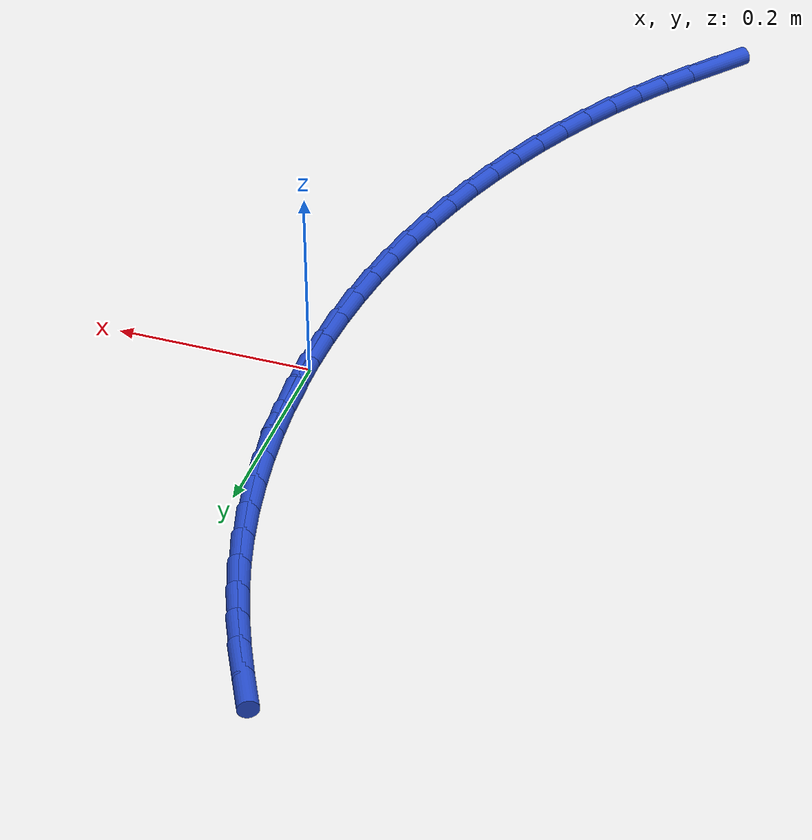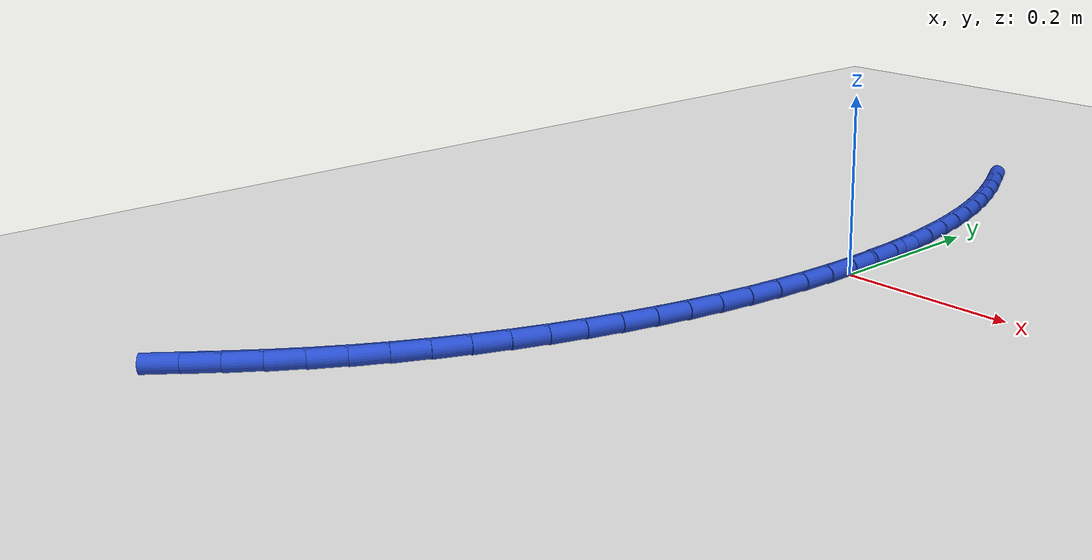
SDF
<sdf version="1.6">
 <world name="default">
  <model name="ground_plane">
   <static>1</static>
   <link name="link">
    <collision name="collision">
     <geometry><plane><normal>0 0 1</normal><size>100 100</size></plane></geometry>
     <surface><friction><ode><mu>100</mu><mu2>50</mu2></ode></friction></surface>
    </collision>
    <visual name="visual">
     <cast_shadows>0</cast_shadows>
     <geometry><plane><normal>0 0 1</normal><size>100 100</size></plane></geometry>
     <material>
      <script><uri>file://media/materials/scripts/gazebo.material</uri><name>Gazebo/WhiteGlow</name></script>
     </material>
    </visual>
   </link>
  </model>
  <model name="line">
   <link name="link_0">
    <pose>1.6479873021779667e-17 -9.020562075079397e-17 0.01 0 1.57 -1.5525866050598032</pose>
    <collision name="collision">
     <geometry><cylinder><radius>0.01</radius><length>0.08</length></cylinder></geometry>
    </collision>
    <visual name="visual">
     <material>
      <script><name>Gazebo/Blue</name><uri>file://media/materials/scripts/gazebo.material</uri></script>
     </material>
     <geometry><cylinder><radius>0.01</radius><length>0.08</length></cylinder></geometry>
    </visual>
   </link>
   <link name="link_1">
    <pose>-0.0006907679868224856 0.037929829114566306 0.01 0 1.57 -1.5156297816635451</pose>
    <collision name="collision">
     <geometry><cylinder><radius>0.01</radius><length>0.08</length></cylinder></geometry>
    </collision>
    <visual name="visual">
     <material>
      <script><name>Gazebo/Blue</name><uri>file://media/materials/scripts/gazebo.material</uri></script>
     </material>
     <geometry><cylinder><radius>0.01</radius><length>0.08</length></cylinder></geometry>
    </visual>
   </link>
   <link name="link_2">
    <pose>-0.002787971782735226 0.07590711865418806 0.01 0 1.57 -1.47872899902266</pose>
    <collision name="collision">
     <geometry><cylinder><radius>0.01</radius><length>0.08</length></cylinder></geometry>
    </collision>
    <visual name="visual">
     <material>
      <script><name>Gazebo/Blue</name><uri>file://media/materials/scripts/gazebo.material</uri></script>
     </material>
     <geometry><cylinder><radius>0.01</radius><length>0.08</length></cylinder></geometry>
    </visual>
   </link>
   <link name="link_3">
    <pose>-0.006281897958674518 0.11374951848862565 0.01 0 1.57 -1.4414515022735026</pose>
    <collision name="collision">
     <geometry><cylinder><radius>0.01</radius><length>0.08</length></cylinder></geometry>
    </collision>
    <visual name="visual">
     <material>
      <script><name>Gazebo/Blue</name><uri>file://media/materials/scripts/gazebo.material</uri></script>
     </material>
     <geometry><cylinder><radius>0.01</radius><length>0.08</length></cylinder></geometry>
    </visual>
   </link>
   <link name="link_4">
    <pose>-0.011162833085576675 0.15127467848763962 0.01 0 1.57 -1.4033543646934457</pose>
    <collision name="collision">
     <geometry><cylinder><radius>0.01</radius><length>0.08</length></cylinder></geometry>
    </collision>
    <visual name="visual">
     <material>
      <script><name>Gazebo/Blue</name><uri>file://media/materials/scripts/gazebo.material</uri></script>
     </material>
     <geometry><cylinder><radius>0.01</radius><length>0.08</length></cylinder></geometry>
    </visual>
   </link>
   <link name="link_5">
    <pose>-0.017421063734378003 0.18830024852099056 0.01 0 1.57 -1.3639714678418755</pose>
    <collision name="collision">
     <geometry><cylinder><radius>0.01</radius><length>0.08</length></cylinder></geometry>
    </collision>
    <visual name="visual">
     <material>
      <script><name>Gazebo/Blue</name><uri>file://media/materials/scripts/gazebo.material</uri></script>
     </material>
     <geometry><cylinder><radius>0.01</radius><length>0.08</length></cylinder></geometry>
    </visual>
   </link>
   <link name="link_6">
    <pose>-0.025046876476014824 0.22464387845843903 0.01 0 1.57 -1.3227998943592105</pose>
    <collision name="collision">
     <geometry><cylinder><radius>0.01</radius><length>0.08</length></cylinder></geometry>
    </collision>
    <visual name="visual">
     <material>
      <script><name>Gazebo/Blue</name><uri>file://media/materials/scripts/gazebo.material</uri></script>
     </material>
     <geometry><cylinder><radius>0.01</radius><length>0.08</length></cylinder></geometry>
    </visual>
   </link>
   <link name="link_7">
    <pose>-0.03403055788142345 0.2601232181697456 0.01 0 1.57 -1.2792855298626473</pose>
    <collision name="collision">
     <geometry><cylinder><radius>0.01</radius><length>0.08</length></cylinder></geometry>
    </collision>
    <visual name="visual">
     <material>
      <script><name>Gazebo/Blue</name><uri>file://media/materials/scripts/gazebo.material</uri></script>
     </material>
     <geometry><cylinder><radius>0.01</radius><length>0.08</length></cylinder></geometry>
    </visual>
   </link>
   <link name="link_8">
    <pose>-0.04436239452154017 0.2945559175246707 0.01 0 1.57 -1.2337829482422613</pose>
    <collision name="collision">
     <geometry><cylinder><radius>0.01</radius><length>0.08</length></cylinder></geometry>
    </collision>
    <visual name="visual">
     <material>
      <script><name>Gazebo/Blue</name><uri>file://media/materials/scripts/gazebo.material</uri></script>
     </material>
     <geometry><cylinder><radius>0.01</radius><length>0.08</length></cylinder></geometry>
    </visual>
   </link>
   <link name="link_9">
    <pose>-0.056025664388597664 0.327843397632249 0.01 0 1.57 -1.190408357682</pose>
    <collision name="collision">
     <geometry><cylinder><radius>0.01</radius><length>0.08</length></cylinder></geometry>
    </collision>
    <visual name="visual">
     <material>
      <script><name>Gazebo/Blue</name><uri>file://media/materials/scripts/gazebo.material</uri></script>
     </material>
     <geometry><cylinder><radius>0.01</radius><length>0.08</length></cylinder></geometry>
    </visual>
   </link>
   <link name="link_10">
    <pose>-0.06897511160874324 0.3602281355308742 0.01 0 1.57 -1.1513973339295231</pose>
    <collision name="collision">
     <geometry><cylinder><radius>0.01</radius><length>0.08</length></cylinder></geometry>
    </collision>
    <visual name="visual">
     <material>
      <script><name>Gazebo/Blue</name><uri>file://media/materials/scripts/gazebo.material</uri></script>
     </material>
     <geometry><cylinder><radius>0.01</radius><length>0.08</length></cylinder></geometry>
    </visual>
   </link>
   <link name="link_11">
    <pose>-0.08315821973641305 0.3920393914878643 0.01 0 1.57 -1.1178304396316956</pose>
    <collision name="collision">
     <geometry><cylinder><radius>0.01</radius><length>0.08</length></cylinder></geometry>
    </collision>
    <visual name="visual">
     <material>
      <script><name>Gazebo/Blue</name><uri>file://media/materials/scripts/gazebo.material</uri></script>
     </material>
     <geometry><cylinder><radius>0.01</radius><length>0.08</length></cylinder></geometry>
    </visual>
   </link>
   <link name="link_12">
    <pose>-0.09852247232458754 0.4236064257879374 0.01 0 1.57 -1.090436765348096</pose>
    <collision name="collision">
     <geometry><cylinder><radius>0.01</radius><length>0.08</length></cylinder></geometry>
    </collision>
    <visual name="visual">
     <material>
      <script><name>Gazebo/Blue</name><uri>file://media/materials/scripts/gazebo.material</uri></script>
     </material>
     <geometry><cylinder><radius>0.01</radius><length>0.08</length></cylinder></geometry>
    </visual>
   </link>
   <link name="link_191">
    <pose>-0.2417867150182596 -0.6511873879246485 0.01 0 1.57 0.8858517105725336</pose>
    <collision name="collision">
     <geometry><cylinder><radius>0.01</radius><length>0.08</length></cylinder></geometry>
    </collision>
    <visual name="visual">
     <material>
      <script><name>Gazebo/Blue</name><uri>file://media/materials/scripts/gazebo.material</uri></script>
     </material>
     <geometry><cylinder><radius>0.01</radius><length>0.08</length></cylinder></geometry>
    </visual>
   </link>
   <link name="link_192">
    <pose>-0.21824749485372033 -0.6223711102191926 0.01 0 1.57 0.9088028845525792</pose>
    <collision name="collision">
     <geometry><cylinder><radius>0.01</radius><length>0.08</length></cylinder></geometry>
    </collision>
    <visual name="visual">
     <material>
      <script><name>Gazebo/Blue</name><uri>file://media/materials/scripts/gazebo.material</uri></script>
     </material>
     <geometry><cylinder><radius>0.01</radius><length>0.08</length></cylinder></geometry>
    </visual>
   </link>
   <link name="link_193">
    <pose>-0.19538959473188244 -0.5930399390032814 0.01 0 1.57 0.941928545717613</pose>
    <collision name="collision">
     <geometry><cylinder><radius>0.01</radius><length>0.08</length></cylinder></geometry>
    </collision>
    <visual name="visual">
     <material>
      <script><name>Gazebo/Blue</name><uri>file://media/materials/scripts/gazebo.material</uri></script>
     </material>
     <geometry><cylinder><radius>0.01</radius><length>0.08</length></cylinder></geometry>
    </visual>
   </link>
   <link name="link_194">
    <pose>-0.1735104468937431 -0.5629606319192207 0.01 0 1.57 0.9831797628671597</pose>
    <collision name="collision">
     <geometry><cylinder><radius>0.01</radius><length>0.08</length></cylinder></geometry>
    </collision>
    <visual name="visual">
     <material>
      <script><name>Gazebo/Blue</name><uri>file://media/materials/scripts/gazebo.material</uri></script>
     </material>
     <geometry><cylinder><radius>0.01</radius><length>0.08</length></cylinder></geometry>
    </visual>
   </link>
   <link name="link_195">
    <pose>-0.15285704971749567 -0.5319546087938979 0.01 0 1.57 1.0249725018235902</pose>
    <collision name="collision">
     <geometry><cylinder><radius>0.01</radius><length>0.08</length></cylinder></geometry>
    </collision>
    <visual name="visual">
     <material>
      <script><name>Gazebo/Blue</name><uri>file://media/materials/scripts/gazebo.material</uri></script>
     </material>
     <geometry><cylinder><radius>0.01</radius><length>0.08</length></cylinder></geometry>
    </visual>
   </link>
   <link name="link_196">
    <pose>-0.1334816667018433 -0.5000543507002626 0.01 0 1.57 1.065585512247804</pose>
    <collision name="collision">
     <geometry><cylinder><radius>0.01</radius><length>0.08</length></cylinder></geometry>
    </collision>
    <visual name="visual">
     <material>
      <script><name>Gazebo/Blue</name><uri>file://media/materials/scripts/gazebo.material</uri></script>
     </material>
     <geometry><cylinder><radius>0.01</radius><length>0.08</length></cylinder></geometry>
    </visual>
   </link>
   <link name="link_197">
    <pose>-0.11538956744624014 -0.4673432725293852 0.01 0 1.57 1.1051338137057058</pose>
    <collision name="collision">
     <geometry><cylinder><radius>0.01</radius><length>0.08</length></cylinder></geometry>
    </collision>
    <visual name="visual">
     <material>
      <script><name>Gazebo/Blue</name><uri>file://media/materials/scripts/gazebo.material</uri></script>
     </material>
     <geometry><cylinder><radius>0.01</radius><length>0.08</length></cylinder></geometry>
    </visual>
   </link>
   <link name="link_198">
    <pose>-0.09858602155013886 -0.43390478917233344 0.01 0 1.57 1.1437387717147132</pose>
    <collision name="collision">
     <geometry><cylinder><radius>0.01</radius><length>0.08</length></cylinder></geometry>
    </collision>
    <visual name="visual">
     <material>
      <script><name>Gazebo/Blue</name><uri>file://media/materials/scripts/gazebo.material</uri></script>
     </material>
     <geometry><cylinder><radius>0.01</radius><length>0.08</length></cylinder></geometry>
    </visual>
   </link>
   <link name="link_199">
    <pose>-0.08307629861299269 -0.399822315520176 0.01 0 1.57 1.1815266132137225</pose>
    <collision name="collision">
     <geometry><cylinder><radius>0.01</radius><length>0.08</length></cylinder></geometry>
    </collision>
    <visual name="visual">
     <material>
      <script><name>Gazebo/Blue</name><uri>file://media/materials/scripts/gazebo.material</uri></script>
     </material>
     <geometry><cylinder><radius>0.01</radius><length>0.08</length></cylinder></geometry>
    </visual>
   </link>
   <link name="link_200">
    <pose>-0.06886566823425479 -0.36517926646398186 0.01 0 1.57 1.2186274117264113</pose>
    <collision name="collision">
     <geometry><cylinder><radius>0.01</radius><length>0.08</length></cylinder></geometry>
    </collision>
    <visual name="visual">
     <material>
      <script><name>Gazebo/Blue</name><uri>file://media/materials/scripts/gazebo.material</uri></script>
     </material>
     <geometry><cylinder><radius>0.01</radius><length>0.08</length></cylinder></geometry>
    </visual>
   </link>
   <link name="link_201">
    <pose>-0.05595940001337837 -0.33005905689481957 0.01 0 1.57 1.2551744834090945</pose>
    <collision name="collision">
     <geometry><cylinder><radius>0.01</radius><length>0.08</length></cylinder></geometry>
    </collision>
    <visual name="visual">
     <material>
      <script><name>Gazebo/Blue</name><uri>file://media/materials/scripts/gazebo.material</uri></script>
     </material>
     <geometry><cylinder><radius>0.01</radius><length>0.08</length></cylinder></geometry>
    </visual>
   </link>
   <link name="link_202">
    <pose>-0.04436276355006736 -0.29454510170126413 0.01 0 1.57 1.2914284126931874</pose>
    <collision name="collision">
     <geometry><cylinder><radius>0.01</radius><length>0.08</length></cylinder></geometry>
    </collision>
    <visual name="visual">
     <material>
      <script><name>Gazebo/Blue</name><uri>file://media/materials/scripts/gazebo.material</uri></script>
     </material>
     <geometry><cylinder><radius>0.01</radius><length>0.08</length></cylinder></geometry>
    </visual>
   </link>
   <link name="link_203">
    <pose>-0.03408228045727202 -0.25870838276186886 0.01 0 1.57 1.327940177440067</pose>
    <collision name="collision">
     <geometry><cylinder><radius>0.01</radius><length>0.08</length></cylinder></geometry>
    </collision>
    <visual name="visual">
     <material>
      <script><name>Gazebo/Blue</name><uri>file://media/materials/scripts/gazebo.material</uri></script>
     </material>
     <geometry><cylinder><radius>0.01</radius><length>0.08</length></cylinder></geometry>
    </visual>
   </link>
   <link name="link_204">
    <pose>-0.025129392728829882 -0.22257102053528638 0.01 0 1.57 1.3647827741254666</pose>
    <collision name="collision">
     <geometry><cylinder><radius>0.01</radius><length>0.08</length></cylinder></geometry>
    </collision>
    <visual name="visual">
     <material>
      <script><name>Gazebo/Blue</name><uri>file://media/materials/scripts/gazebo.material</uri></script>
     </material>
     <geometry><cylinder><radius>0.01</radius><length>0.08</length></cylinder></geometry>
    </visual>
   </link>
   <link name="link_205">
    <pose>-0.017516750918141036 -0.1861431339832156 0.01 0 1.57 1.4018942697612098</pose>
    <collision name="collision">
     <geometry><cylinder><radius>0.01</radius><length>0.08</length></cylinder></geometry>
    </collision>
    <visual name="visual">
     <material>
      <script><name>Gazebo/Blue</name><uri>file://media/materials/scripts/gazebo.material</uri></script>
     </material>
     <geometry><cylinder><radius>0.01</radius><length>0.08</length></cylinder></geometry>
    </visual>
   </link>
   <link name="link_206">
    <pose>-0.011257005578605601 -0.1494348420673554 0.01 0 1.57 1.4392088573641617</pose>
    <collision name="collision">
     <geometry><cylinder><radius>0.01</radius><length>0.08</length></cylinder></geometry>
    </collision>
    <visual name="visual">
     <material>
      <script><name>Gazebo/Blue</name><uri>file://media/materials/scripts/gazebo.material</uri></script>
     </material>
     <geometry><cylinder><radius>0.01</radius><length>0.08</length></cylinder></geometry>
    </visual>
   </link>
   <link name="link_207">
    <pose>-0.006362807263623673 -0.11245626374940491 0.01 0 1.57 1.4766575973536482</pose>
    <collision name="collision">
     <geometry><cylinder><radius>0.01</radius><length>0.08</length></cylinder></geometry>
    </collision>
    <visual name="visual">
     <material>
      <script><name>Gazebo/Blue</name><uri>file://media/materials/scripts/gazebo.material</uri></script>
     </material>
     <geometry><cylinder><radius>0.01</radius><length>0.08</length></cylinder></geometry>
    </visual>
   </link>
   <link name="link_208">
    <pose>-0.0028468065265953514 -0.07521751799106283 0.01 0 1.57 1.5141692562113385</pose>
    <collision name="collision">
     <geometry><cylinder><radius>0.01</radius><length>0.08</length></cylinder></geometry>
    </collision>
    <visual name="visual">
     <material>
      <script><name>Gazebo/Blue</name><uri>file://media/materials/scripts/gazebo.material</uri></script>
     </material>
     <geometry><cylinder><radius>0.01</radius><length>0.08</length></cylinder></geometry>
    </visual>
   </link>
   <link name="link_209">
    <pose>-0.0007216539209207173 -0.03772872375402731 0.01 0 1.57 1.5516712183739843</pose>
    <collision name="collision">
     <geometry><cylinder><radius>0.01</radius><length>0.08</length></cylinder></geometry>
    </collision>
    <visual name="visual">
     <material>
      <script><name>Gazebo/Blue</name><uri>file://media/materials/scripts/gazebo.material</uri></script>
     </material>
     <geometry><cylinder><radius>0.01</radius><length>0.08</length></cylinder></geometry>
    </visual>
   </link>
   <link name="link_210">
    <pose>3.642919299551295e-17 1.1102230246251565e-16 0.01 0 1.57 -1.5525022105580162</pose>
    <collision name="collision">
     <geometry><cylinder><radius>0.01</radius><length>0.08</length></cylinder></geometry>
    </collision>
    <visual name="visual">
     <material>
      <script><name>Gazebo/Blue</name><uri>file://media/materials/scripts/gazebo.material</uri></script>
     </material>
     <geometry><cylinder><radius>0.01</radius><length>0.08</length></cylinder></geometry>
    </visual>
   </link>
   <link name="link_211">
    <pose>-0.0006944953172330947 0.037958534309323146 0.01 0 1.57 -1.5152382187840876</pose>
    <collision name="collision">
     <geometry><cylinder><radius>0.01</radius><length>0.08</length></cylinder></geometry>
    </collision>
    <visual name="visual">
     <material>
      <script><name>Gazebo/Blue</name><uri>file://media/materials/scripts/gazebo.material</uri></script>
     </material>
     <geometry><cylinder><radius>0.01</radius><length>0.08</length></cylinder></geometry>
    </visual>
   </link>
   <link name="link_212">
    <pose>-0.002817790426020381 0.07613676021224379 0.01 0 1.57 -1.5338036184638077</pose>
    <collision name="collision">
     <geometry><cylinder><radius>0.01</radius><length>0.08</length></cylinder></geometry>
    </collision>
    <visual name="visual">
     <material>
      <script><name>Gazebo/Blue</name><uri>file://media/materials/scripts/gazebo.material</uri></script>
     </material>
     <geometry><cylinder><radius>0.01</radius><length>0.08</length></cylinder></geometry>
    </visual>
   </link>
  </model>
 </world>
</sdf>
